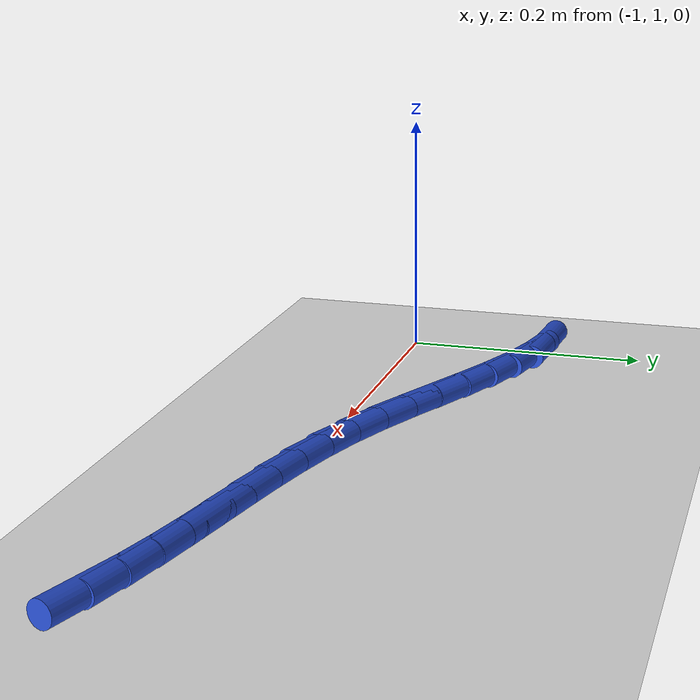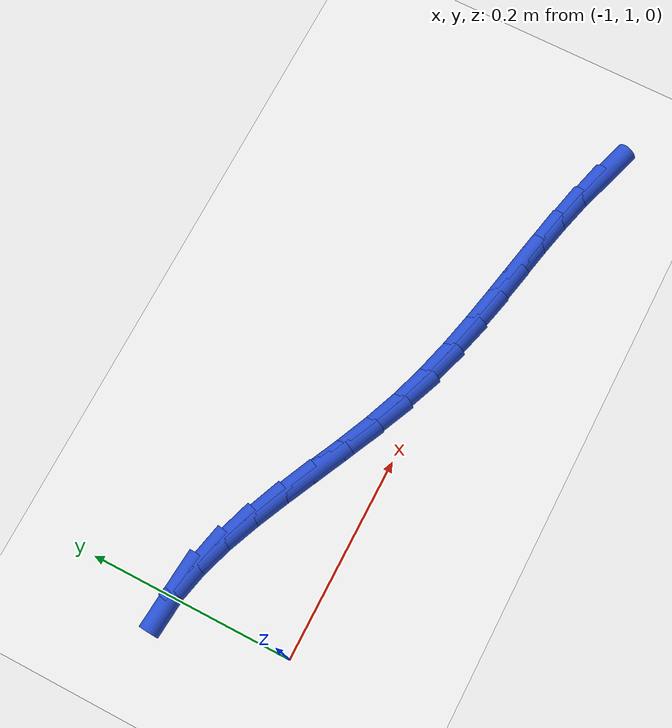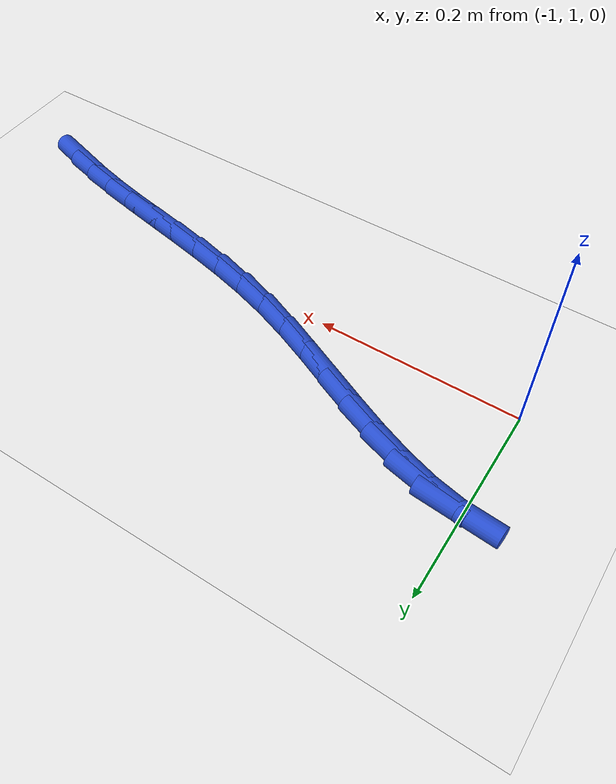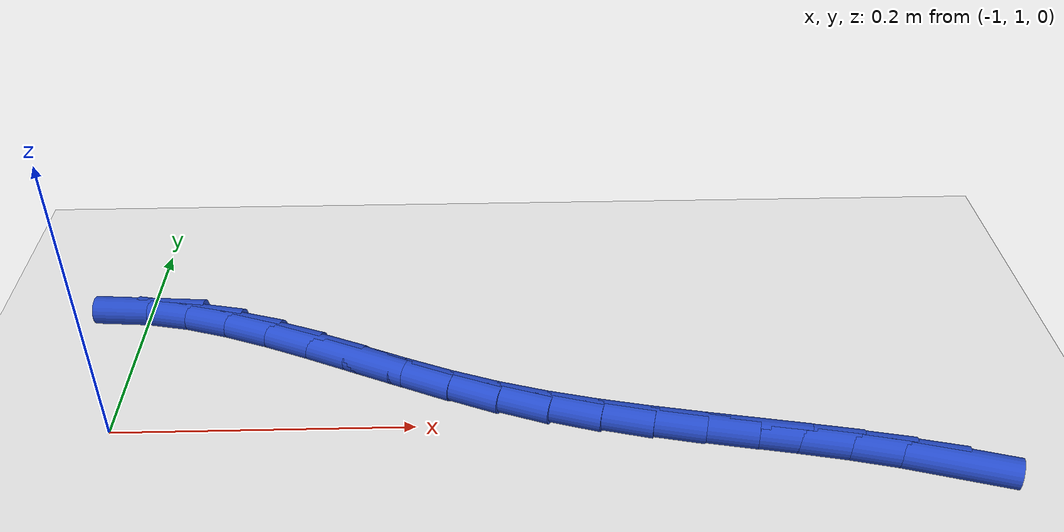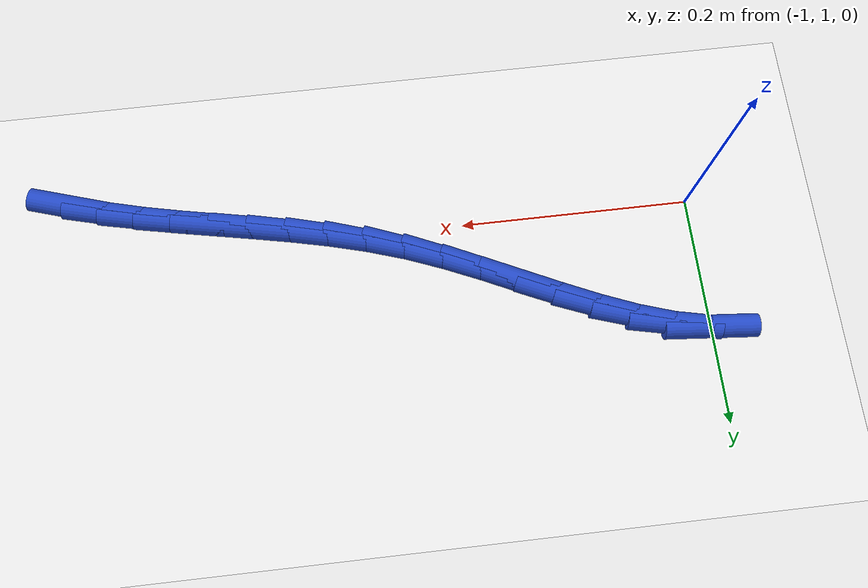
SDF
<sdf version="1.6">
 <world name="default">
  <model name="ground_plane">
   <static>1</static>
   <link name="link">
    <collision name="collision">
     <geometry><plane><normal>0 0 1</normal><size>100 100</size></plane></geometry>
     <surface><friction><ode><mu>100</mu><mu2>50</mu2></ode></friction></surface>
    </collision>
    <visual name="visual">
     <cast_shadows>0</cast_shadows>
     <geometry><plane><normal>0 0 1</normal><size>100 100</size></plane></geometry>
     <material>
      <script><uri>file://media/materials/scripts/gazebo.material</uri><name>Gazebo/WhiteGlow</name></script>
     </material>
    </visual>
   </link>
  </model>
  <model name="line">
   <link name="link_34">
    <pose>-0.462313838802202 0.9479246365457925 0.01 0 1.57 -0.3019246639378615</pose>
    <collision name="collision">
     <geometry><cylinder><radius>0.01</radius><length>0.08</length></cylinder></geometry>
    </collision>
    <visual name="visual">
     <material>
      <script><name>Gazebo/Blue</name><uri>file://media/materials/scripts/gazebo.material</uri></script>
     </material>
     <geometry><cylinder><radius>0.01</radius><length>0.08</length></cylinder></geometry>
    </visual>
   </link>
   <link name="link_35">
    <pose>-0.49225138261486673 0.9572485750379284 0.01 0 1.57 -0.2516994135280867</pose>
    <collision name="collision">
     <geometry><cylinder><radius>0.01</radius><length>0.08</length></cylinder></geometry>
    </collision>
    <visual name="visual">
     <material>
      <script><name>Gazebo/Blue</name><uri>file://media/materials/scripts/gazebo.material</uri></script>
     </material>
     <geometry><cylinder><radius>0.01</radius><length>0.08</length></cylinder></geometry>
    </visual>
   </link>
   <link name="link_36">
    <pose>-0.5229290651953346 0.9651374307920357 0.01 0 1.57 -0.21720835206965836</pose>
    <collision name="collision">
     <geometry><cylinder><radius>0.01</radius><length>0.08</length></cylinder></geometry>
    </collision>
    <visual name="visual">
     <material>
      <script><name>Gazebo/Blue</name><uri>file://media/materials/scripts/gazebo.material</uri></script>
     </material>
     <geometry><cylinder><radius>0.01</radius><length>0.08</length></cylinder></geometry>
    </visual>
   </link>
   <link name="link_37">
    <pose>-0.5542238360060833 0.9720438736547168 0.01 0 1.57 -0.19796832872379277</pose>
    <collision name="collision">
     <geometry><cylinder><radius>0.01</radius><length>0.08</length></cylinder></geometry>
    </collision>
    <visual name="visual">
     <material>
      <script><name>Gazebo/Blue</name><uri>file://media/materials/scripts/gazebo.material</uri></script>
     </material>
     <geometry><cylinder><radius>0.01</radius><length>0.08</length></cylinder></geometry>
    </visual>
   </link>
   <link name="link_38">
    <pose>-0.5860126445095902 0.9784205734725735 0.01 0 1.57 -0.1934358672910658</pose>
    <collision name="collision">
     <geometry><cylinder><radius>0.01</radius><length>0.08</length></cylinder></geometry>
    </collision>
    <visual name="visual">
     <material>
      <script><name>Gazebo/Blue</name><uri>file://media/materials/scripts/gazebo.material</uri></script>
     </material>
     <geometry><cylinder><radius>0.01</radius><length>0.08</length></cylinder></geometry>
    </visual>
   </link>
   <link name="link_39">
    <pose>-0.6181724401683326 0.9847202000922074 0.01 0 1.57 -0.20313529746103845</pose>
    <collision name="collision">
     <geometry><cylinder><radius>0.01</radius><length>0.08</length></cylinder></geometry>
    </collision>
    <visual name="visual">
     <material>
      <script><name>Gazebo/Blue</name><uri>file://media/materials/scripts/gazebo.material</uri></script>
     </material>
     <geometry><cylinder><radius>0.01</radius><length>0.08</length></cylinder></geometry>
    </visual>
   </link>
   <link name="link_40">
    <pose>-0.6505801724447882 0.9913954233602211 0.01 0 1.57 -0.22668101221085432</pose>
    <collision name="collision">
     <geometry><cylinder><radius>0.01</radius><length>0.08</length></cylinder></geometry>
    </collision>
    <visual name="visual">
     <material>
      <script><name>Gazebo/Blue</name><uri>file://media/materials/scripts/gazebo.material</uri></script>
     </material>
     <geometry><cylinder><radius>0.01</radius><length>0.08</length></cylinder></geometry>
    </visual>
   </link>
   <link name="link_41">
    <pose>-0.6831127908014344 0.9988989131232164 0.01 0 1.57 -0.26371537399365885</pose>
    <collision name="collision">
     <geometry><cylinder><radius>0.01</radius><length>0.08</length></cylinder></geometry>
    </collision>
    <visual name="visual">
     <material>
      <script><name>Gazebo/Blue</name><uri>file://media/materials/scripts/gazebo.material</uri></script>
     </material>
     <geometry><cylinder><radius>0.01</radius><length>0.08</length></cylinder></geometry>
    </visual>
   </link>
   <link name="link_42">
    <pose>-0.715647244700748 1.007683339227795 0.01 0 1.57 -0.31377782083108036</pose>
    <collision name="collision">
     <geometry><cylinder><radius>0.01</radius><length>0.08</length></cylinder></geometry>
    </collision>
    <visual name="visual">
     <material>
      <script><name>Gazebo/Blue</name><uri>file://media/materials/scripts/gazebo.material</uri></script>
     </material>
     <geometry><cylinder><radius>0.01</radius><length>0.08</length></cylinder></geometry>
    </visual>
   </link>
   <link name="link_43">
    <pose>-0.7480604836052075 1.0182013715205593 0.01 0 1.57 -0.37284487881467715</pose>
    <collision name="collision">
     <geometry><cylinder><radius>0.01</radius><length>0.08</length></cylinder></geometry>
    </collision>
    <visual name="visual">
     <material>
      <script><name>Gazebo/Blue</name><uri>file://media/materials/scripts/gazebo.material</uri></script>
     </material>
     <geometry><cylinder><radius>0.01</radius><length>0.08</length></cylinder></geometry>
    </visual>
   </link>
   <link name="link_44">
    <pose>-0.7802391555915742 1.030787725763193 0.01 0 1.57 -0.4182823193498981</pose>
    <collision name="collision">
     <geometry><cylinder><radius>0.01</radius><length>0.08</length></cylinder></geometry>
    </collision>
    <visual name="visual">
     <material>
      <script><name>Gazebo/Blue</name><uri>file://media/materials/scripts/gazebo.material</uri></script>
     </material>
     <geometry><cylinder><radius>0.01</radius><length>0.08</length></cylinder></geometry>
    </visual>
   </link>
   <link name="link_45">
    <pose>-0.8121365554884025 1.0449665630969243 0.01 0 1.57 -0.44205421708148795</pose>
    <collision name="collision">
     <geometry><cylinder><radius>0.01</radius><length>0.08</length></cylinder></geometry>
    </collision>
    <visual name="visual">
     <material>
      <script><name>Gazebo/Blue</name><uri>file://media/materials/scripts/gazebo.material</uri></script>
     </material>
     <geometry><cylinder><radius>0.01</radius><length>0.08</length></cylinder></geometry>
    </visual>
   </link>
   <link name="link_46">
    <pose>-0.8437339880127642 1.059921389733139 0.01 0 1.57 -0.4448998323377454</pose>
    <collision name="collision">
     <geometry><cylinder><radius>0.01</radius><length>0.08</length></cylinder></geometry>
    </collision>
    <visual name="visual">
     <material>
      <script><name>Gazebo/Blue</name><uri>file://media/materials/scripts/gazebo.material</uri></script>
     </material>
     <geometry><cylinder><radius>0.01</radius><length>0.08</length></cylinder></geometry>
    </visual>
   </link>
   <link name="link_47">
    <pose>-0.8750128546812332 1.0748345346122916 0.01 0 1.57 -0.42634305308882825</pose>
    <collision name="collision">
     <geometry><cylinder><radius>0.01</radius><length>0.08</length></cylinder></geometry>
    </collision>
    <visual name="visual">
     <material>
      <script><name>Gazebo/Blue</name><uri>file://media/materials/scripts/gazebo.material</uri></script>
     </material>
     <geometry><cylinder><radius>0.01</radius><length>0.08</length></cylinder></geometry>
    </visual>
   </link>
   <link name="link_48">
    <pose>-0.9059545570103823 1.0888883266748357 0.01 0 1.57 -0.3845132723790874</pose>
    <collision name="collision">
     <geometry><cylinder><radius>0.01</radius><length>0.08</length></cylinder></geometry>
    </collision>
    <visual name="visual">
     <material>
      <script><name>Gazebo/Blue</name><uri>file://media/materials/scripts/gazebo.material</uri></script>
     </material>
     <geometry><cylinder><radius>0.01</radius><length>0.08</length></cylinder></geometry>
    </visual>
   </link>
   <link name="link_49">
    <pose>-0.9365404965167861 1.1012650948612264 0.01 0 1.57 -0.3161260971678653</pose>
    <collision name="collision">
     <geometry><cylinder><radius>0.01</radius><length>0.08</length></cylinder></geometry>
    </collision>
    <visual name="visual">
     <material>
      <script><name>Gazebo/Blue</name><uri>file://media/materials/scripts/gazebo.material</uri></script>
     </material>
     <geometry><cylinder><radius>0.01</radius><length>0.08</length></cylinder></geometry>
    </visual>
   </link>
   <link name="link_50">
    <pose>-0.9667520747170172 1.1111471681119167 0.01 0 1.57 -0.2168577262575128</pose>
    <collision name="collision">
     <geometry><cylinder><radius>0.01</radius><length>0.08</length></cylinder></geometry>
    </collision>
    <visual name="visual">
     <material>
      <script><name>Gazebo/Blue</name><uri>file://media/materials/scripts/gazebo.material</uri></script>
     </material>
     <geometry><cylinder><radius>0.01</radius><length>0.08</length></cylinder></geometry>
    </visual>
   </link>
   <link name="link_51">
    <pose>-0.99657069312765 1.1177168753673619 0.01 0 1.57 -0.0827725048130366</pose>
    <collision name="collision">
     <geometry><cylinder><radius>0.01</radius><length>0.08</length></cylinder></geometry>
    </collision>
    <visual name="visual">
     <material>
      <script><name>Gazebo/Blue</name><uri>file://media/materials/scripts/gazebo.material</uri></script>
     </material>
     <geometry><cylinder><radius>0.01</radius><length>0.08</length></cylinder></geometry>
    </visual>
   </link>
  </model>
 </world>
</sdf>
